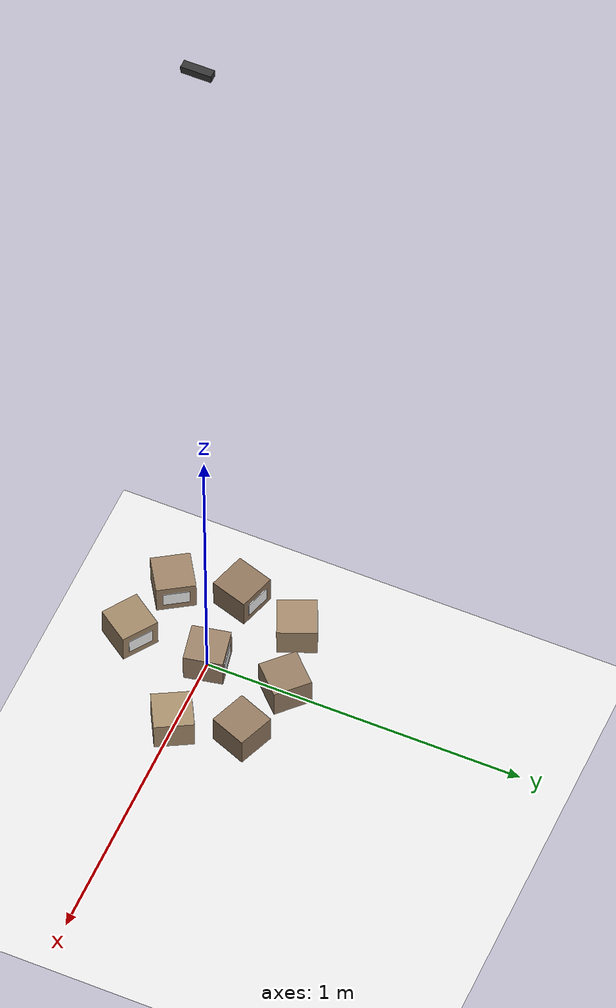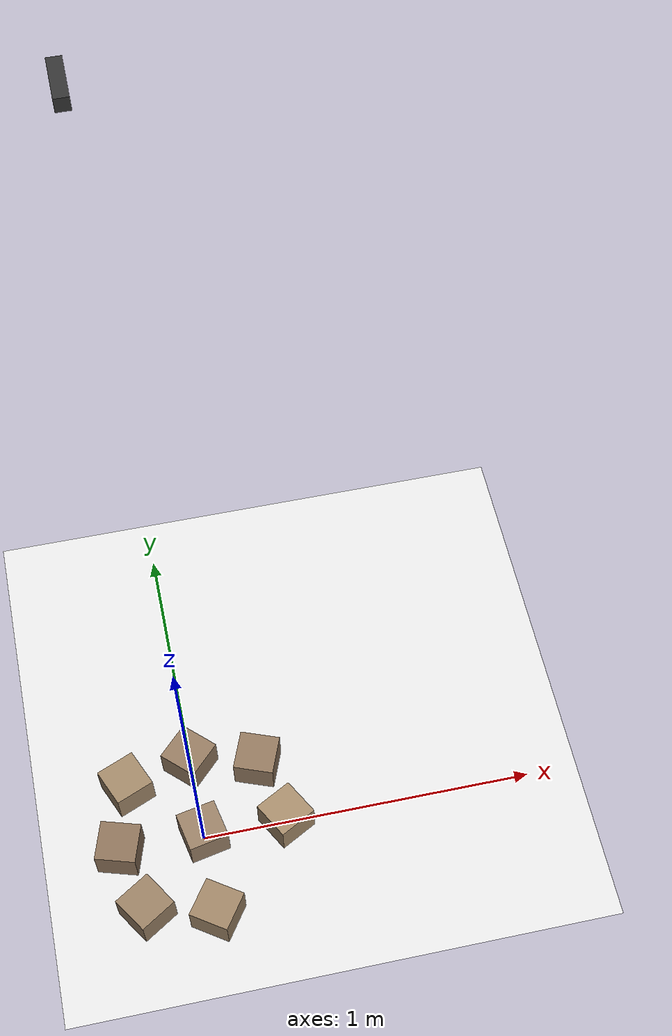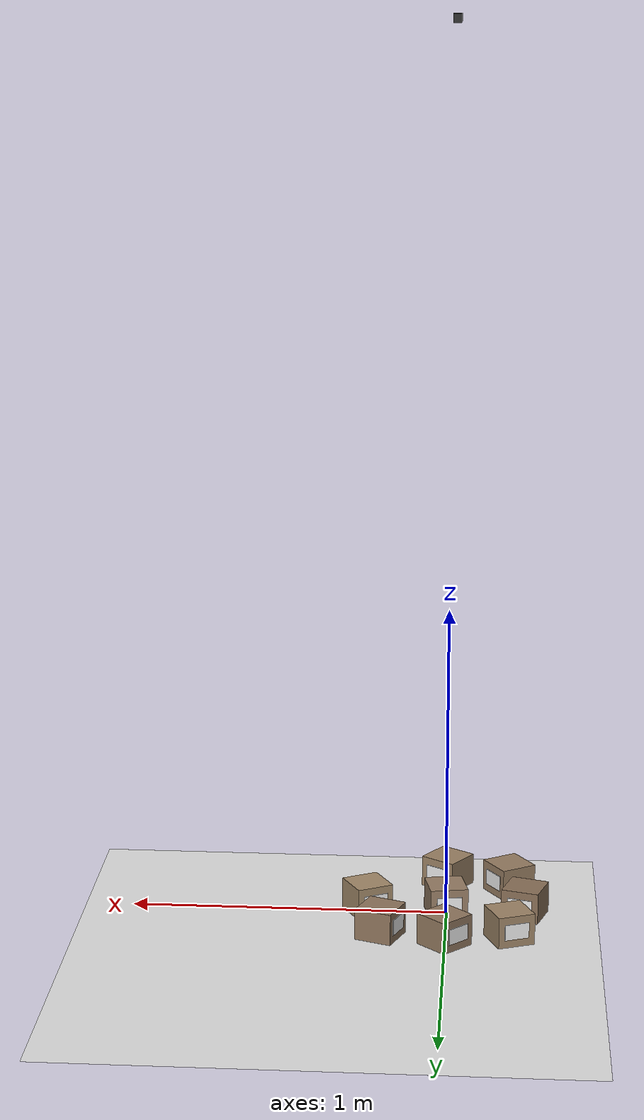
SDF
<?xml version="1.0" ?>
<sdf version="1.9">
  <world name="camera_test">

    <!-- Física -->
    <physics name="1ms" type="ignored">
      <max_step_size>0.001</max_step_size>
      <real_time_factor>1.0</real_time_factor>
    </physics>

    <!-- Plugins del servidor Gazebo -->
    <plugin filename="gz-sim-physics-system" name="gz::sim::systems::Physics"/>
    <plugin filename="gz-sim-scene-broadcaster-system" name="gz::sim::systems::SceneBroadcaster"/>
    <plugin filename="gz-sim-user-commands-system" name="gz::sim::systems::UserCommands"/>
    <plugin filename="gz-sim-sensors-system" name="gz::sim::systems::Sensors">
      <render_engine>ogre2</render_engine>
    </plugin>

    <!-- Iluminación -->
    <light type="directional" name="sun">
      <cast_shadows>true</cast_shadows>
      <pose>0 0 10 0 0 0</pose>
      <diffuse>0.9 0.9 0.9 1</diffuse>
      <specular>0.3 0.3 0.3 1</specular>
      <direction>-0.5 0.1 -0.9</direction>
    </light>

    <!-- Suelo blanco para mejor contraste -->
    <model name="ground_plane">
      <static>true</static>
      <link name="link">
        <collision name="collision">
          <geometry><plane><normal>0 0 1</normal></plane></geometry>
        </collision>
        <visual name="visual">
          <geometry><plane><normal>0 0 1</normal><size>10 10</size></plane></geometry>
          <material>
            <ambient>0.9 0.9 0.9 1</ambient>
            <diffuse>0.9 0.9 0.9 1</diffuse>
          </material>
        </visual>
      </link>
    </model>

    <!-- ==================== CAJAS DE CARTÓN (para YOLO) ==================== -->
    <!-- El modelo YOLOv8-OBB fue entrenado con el dataset Kartonger (cajas de cartón) -->
    <!-- Colores marrones típicos de cajas de cartón -->

    <!-- Caja de cartón 1 (centro) - 0.12 x 0.12 x 0.10m -->
    <model name="cardboard_box_1">
      <pose>0 0 0.05 0 0 0.2</pose>
      <static>true</static>
      <link name="link">
        <!-- Cuerpo principal - Cartón marrón -->
        <visual name="body_visual">
          <geometry><box><size>0.12 0.12 0.10</size></box></geometry>
          <material>
            <ambient>0.6 0.5 0.4 1</ambient>
            <diffuse>0.6 0.5 0.4 1</diffuse>
          </material>
        </visual>
        <!-- Etiqueta blanca (simula etiqueta de envío) -->
        <visual name="label_visual">
          <pose>0 0.061 0 0 0 0</pose>
          <geometry><box><size>0.08 0.002 0.05</size></box></geometry>
          <material>
            <ambient>0.95 0.95 0.95 1</ambient>
            <diffuse>0.95 0.95 0.95 1</diffuse>
          </material>
        </visual>
        <collision name="collision">
          <geometry><box><size>0.12 0.12 0.10</size></box></geometry>
        </collision>
      </link>
    </model>

    <!-- Caja de cartón 2 (izquierda) -->
    <model name="cardboard_box_2">
      <pose>-0.25 0 0.05 0 0 -0.3</pose>
      <static>true</static>
      <link name="link">
        <visual name="body_visual">
          <geometry><box><size>0.12 0.12 0.10</size></box></geometry>
          <material>
            <ambient>0.55 0.45 0.35 1</ambient>
            <diffuse>0.55 0.45 0.35 1</diffuse>
          </material>
        </visual>
        <visual name="label_visual">
          <pose>0 0.061 0 0 0 0</pose>
          <geometry><box><size>0.08 0.002 0.05</size></box></geometry>
          <material>
            <ambient>0.95 0.95 0.95 1</ambient>
            <diffuse>0.95 0.95 0.95 1</diffuse>
          </material>
        </visual>
        <collision name="collision">
          <geometry><box><size>0.12 0.12 0.10</size></box></geometry>
        </collision>
      </link>
    </model>

    <!-- Caja de cartón 3 (derecha) -->
    <model name="cardboard_box_3">
      <pose>0.25 0 0.05 0 0 0.5</pose>
      <static>true</static>
      <link name="link">
        <visual name="body_visual">
          <geometry><box><size>0.12 0.12 0.10</size></box></geometry>
          <material>
            <ambient>0.65 0.55 0.42 1</ambient>
            <diffuse>0.65 0.55 0.42 1</diffuse>
          </material>
        </visual>
        <visual name="label_visual">
          <pose>0 0.061 0 0 0 0</pose>
          <geometry><box><size>0.08 0.002 0.05</size></box></geometry>
          <material>
            <ambient>0.95 0.95 0.95 1</ambient>
            <diffuse>0.95 0.95 0.95 1</diffuse>
          </material>
        </visual>
        <collision name="collision">
          <geometry><box><size>0.12 0.12 0.10</size></box></geometry>
        </collision>
      </link>
    </model>

    <!-- Caja de cartón 4 (arriba) -->
    <model name="cardboard_box_4">
      <pose>0 0.25 0.05 0 0 0.8</pose>
      <static>true</static>
      <link name="link">
        <visual name="body_visual">
          <geometry><box><size>0.12 0.12 0.10</size></box></geometry>
          <material>
            <ambient>0.58 0.48 0.38 1</ambient>
            <diffuse>0.58 0.48 0.38 1</diffuse>
          </material>
        </visual>
        <visual name="label_visual">
          <pose>0 0.061 0 0 0 0</pose>
          <geometry><box><size>0.08 0.002 0.05</size></box></geometry>
          <material>
            <ambient>0.95 0.95 0.95 1</ambient>
            <diffuse>0.95 0.95 0.95 1</diffuse>
          </material>
        </visual>
        <collision name="collision">
          <geometry><box><size>0.12 0.12 0.10</size></box></geometry>
        </collision>
      </link>
    </model>

    <!-- Caja de cartón 5 (abajo) -->
    <model name="cardboard_box_5">
      <pose>0 -0.25 0.05 0 0 -0.6</pose>
      <static>true</static>
      <link name="link">
        <visual name="body_visual">
          <geometry><box><size>0.12 0.12 0.10</size></box></geometry>
          <material>
            <ambient>0.62 0.52 0.40 1</ambient>
            <diffuse>0.62 0.52 0.40 1</diffuse>
          </material>
        </visual>
        <visual name="label_visual">
          <pose>0 0.061 0 0 0 0</pose>
          <geometry><box><size>0.08 0.002 0.05</size></box></geometry>
          <material>
            <ambient>0.95 0.95 0.95 1</ambient>
            <diffuse>0.95 0.95 0.95 1</diffuse>
          </material>
        </visual>
        <collision name="collision">
          <geometry><box><size>0.12 0.12 0.10</size></box></geometry>
        </collision>
      </link>
    </model>

    <!-- Caja de cartón 6 (esquina superior derecha) -->
    <model name="cardboard_box_6">
      <pose>0.2 0.2 0.05 0 0 1.2</pose>
      <static>true</static>
      <link name="link">
        <visual name="body_visual">
          <geometry><box><size>0.12 0.12 0.10</size></box></geometry>
          <material>
            <ambient>0.57 0.47 0.37 1</ambient>
            <diffuse>0.57 0.47 0.37 1</diffuse>
          </material>
        </visual>
        <visual name="label_visual">
          <pose>0 0.061 0 0 0 0</pose>
          <geometry><box><size>0.08 0.002 0.05</size></box></geometry>
          <material>
            <ambient>0.95 0.95 0.95 1</ambient>
            <diffuse>0.95 0.95 0.95 1</diffuse>
          </material>
        </visual>
        <collision name="collision">
          <geometry><box><size>0.12 0.12 0.10</size></box></geometry>
        </collision>
      </link>
    </model>

    <!-- Caja de cartón 7 (esquina inferior izquierda) -->
    <model name="cardboard_box_7">
      <pose>-0.2 -0.2 0.05 0 0 -1.0</pose>
      <static>true</static>
      <link name="link">
        <visual name="body_visual">
          <geometry><box><size>0.12 0.12 0.10</size></box></geometry>
          <material>
            <ambient>0.60 0.50 0.39 1</ambient>
            <diffuse>0.60 0.50 0.39 1</diffuse>
          </material>
        </visual>
        <visual name="label_visual">
          <pose>0 0.061 0 0 0 0</pose>
          <geometry><box><size>0.08 0.002 0.05</size></box></geometry>
          <material>
            <ambient>0.95 0.95 0.95 1</ambient>
            <diffuse>0.95 0.95 0.95 1</diffuse>
          </material>
        </visual>
        <collision name="collision">
          <geometry><box><size>0.12 0.12 0.10</size></box></geometry>
        </collision>
      </link>
    </model>

    <!-- Caja de cartón 8 (esquina superior izquierda) -->
    <model name="cardboard_box_8">
      <pose>-0.2 0.2 0.05 0 0 0.4</pose>
      <static>true</static>
      <link name="link">
        <visual name="body_visual">
          <geometry><box><size>0.12 0.12 0.10</size></box></geometry>
          <material>
            <ambient>0.63 0.53 0.41 1</ambient>
            <diffuse>0.63 0.53 0.41 1</diffuse>
          </material>
        </visual>
        <visual name="label_visual">
          <pose>0 0.061 0 0 0 0</pose>
          <geometry><box><size>0.08 0.002 0.05</size></box></geometry>
          <material>
            <ambient>0.95 0.95 0.95 1</ambient>
            <diffuse>0.95 0.95 0.95 1</diffuse>
          </material>
        </visual>
        <collision name="collision">
          <geometry><box><size>0.12 0.12 0.10</size></box></geometry>
        </collision>
      </link>
    </model>

    <!-- ==================== CÁMARA ==================== -->

    <!-- Cámara a 2.80m mirando hacia abajo -->
    <!-- pose: x y z roll pitch yaw -->
    <!-- pitch = π/2 = 1.5708 rad = 90° (mirando hacia abajo) -->
    <model name="test_camera">
      <pose>0 0 2.80 0 1.5708 0</pose>
      <static>true</static>
      <link name="camera_link">

        <!-- Visual de la cámara (caja pequeña) -->
        <visual name="camera_visual">
          <geometry>
            <box><size>0.025 0.090 0.025</size></box>
          </geometry>
          <material>
            <ambient>0.1 0.1 0.1 1</ambient>
            <diffuse>0.2 0.2 0.2 1</diffuse>
          </material>
        </visual>

        <!-- Sensor de cámara RGB -->
        <sensor name="color_camera" type="camera">
          <pose>0 0 0 0 0 0</pose>
          <always_on>1</always_on>
          <update_rate>15</update_rate>
          <visualize>true</visualize>
          <topic>camera/color/image_raw</topic>
          <camera>
            <!-- FOV similar a RealSense D435i -->
            <horizontal_fov>0.976</horizontal_fov>
            <image>
              <width>640</width>
              <height>480</height>
              <format>RGB_INT8</format>
            </image>
            <clip>
              <near>0.1</near>
              <far>20.0</far>
            </clip>
          </camera>
        </sensor>

      </link>
    </model>

  </world>
</sdf>
